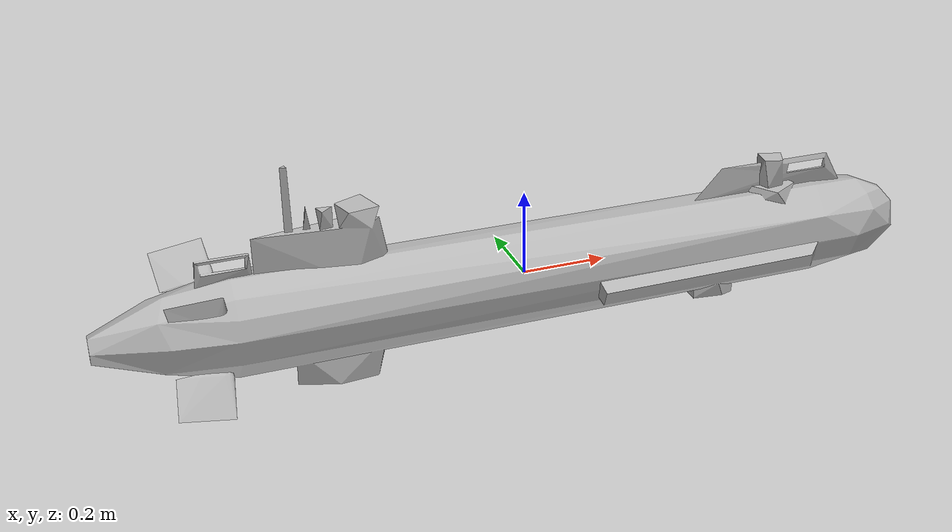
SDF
<?xml version='1.0'?>
<sdf version='1.6'>

  <model name='eca_a9'>
    <pose>0 0 0.0 0 0 0</pose>
    <static>false</static>

    <plugin name="hydrodynamics" filename="libHydrodynamicsPlugin.so">
      <!-- Wave Model -->
      <wave_model>ocean_waves</wave_model>

      <!-- Hydrodynamics -->
      <damping_on>true</damping_on>
      <viscous_drag_on>true</viscous_drag_on>
      <pressure_drag_on>true</pressure_drag_on>

      <!-- Markers -->
      <markers>
        <update_rate>30</update_rate>
        <water_patch>false</water_patch>
        <waterline>false</waterline>
        <underwater_surface>false</underwater_surface>
      </markers>
    </plugin>

    <link name="base_link">
      <visual name="base_visual">
        <geometry>
          <mesh>
            <uri>model://eca_a9/meshes/eca_a9.dae</uri>
          </mesh>
        </geometry>
      </visual>
      <collision name="base_collision">
        <geometry>
          <mesh>
            <uri>model://eca_a9/meshes/eca_a9_collision1.stl</uri>
          </mesh>
        </geometry>
      </collision>
      <inertial>
        <pose>0.06 0 -0.055 0 0 0</pose>
        <mass>69.7</mass>
        <inertia>
          <ixx>0.6</ixx>
          <ixy>0</ixy>
          <iyy>30.0</iyy>
          <iyz>0</iyz>
          <izz>35.0</izz>
        </inertia>
      </inertial>
    </link>
  </model>
</sdf>
